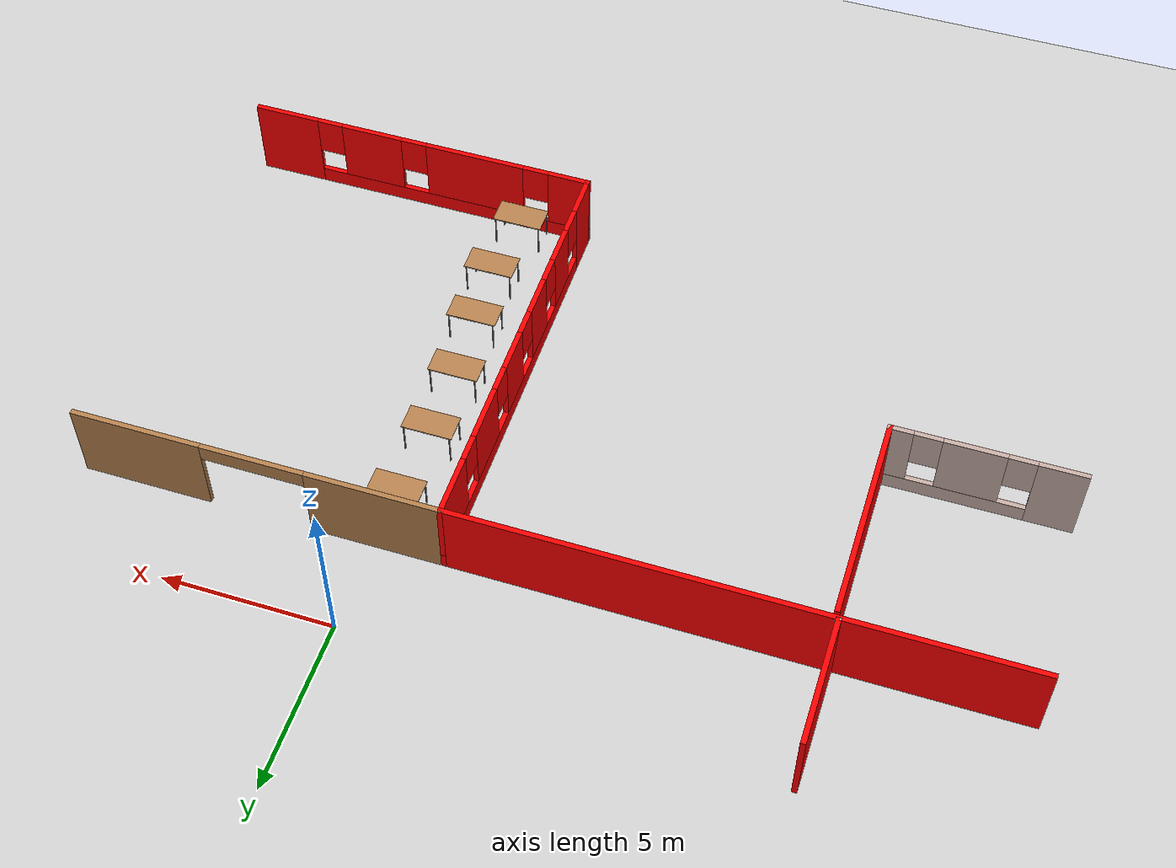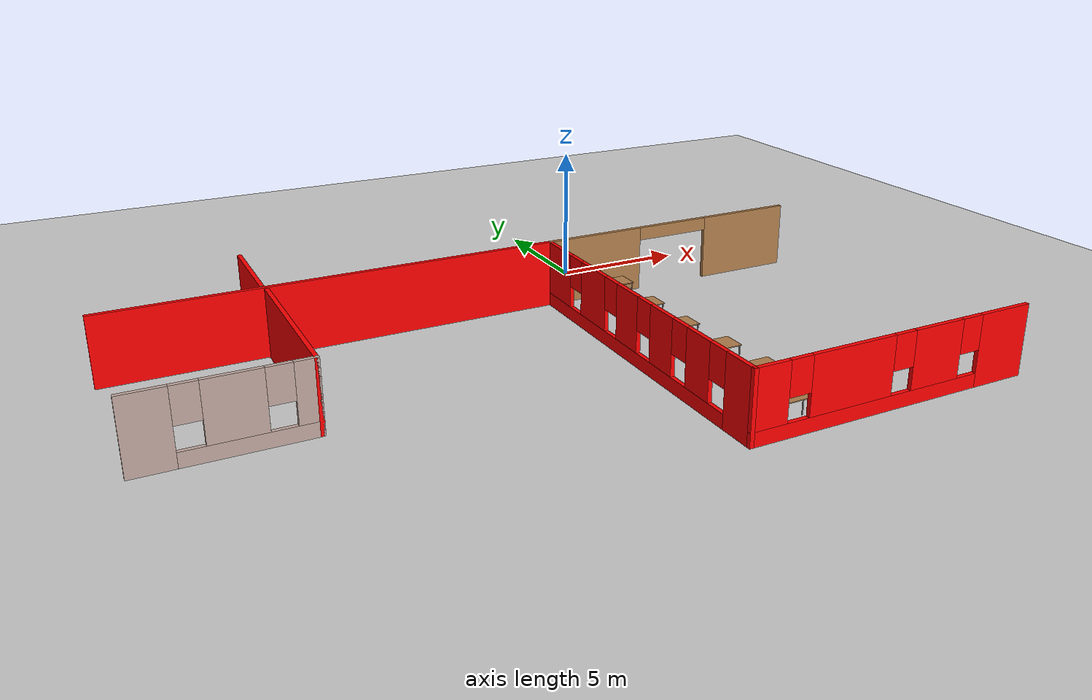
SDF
<sdf version="1.6">
 <world name="default">
  <model name="ground_plane">
   <static>1</static>
   <link name="link">
    <collision name="collision">
     <geometry><plane><normal>0 0 1</normal><size>100 100</size></plane></geometry>
     <surface><friction><ode><mu>100</mu><mu2>50</mu2></ode></friction></surface>
    </collision>
    <visual name="visual">
     <cast_shadows>0</cast_shadows>
     <geometry><plane><normal>0 0 1</normal><size>100 100</size></plane></geometry>
     <material>
      <script><uri>file://media/materials/scripts/gazebo.material</uri><name>Gazebo/Grey</name></script>
     </material>
    </visual>
   </link>
  </model>
  <model name="FloorPlan">
   <pose>0.309467 -3.19534 0 0 -0 0</pose>
   <link name="Wall_106">
    <pose>2.89263 0.399775 0 0 -0 0</pose>
    <visual name="Wall_106_Visual_0">
     <pose>-3.40324 0 1.25 0 -0 0</pose>
     <geometry><box><size>3.94351 0.15 2.5</size></box></geometry>
     <material>
      <script><uri>file://media/materials/scripts/gazebo.material</uri><name>Gazebo/Wood</name></script>
      <ambient>1 1 1 1</ambient>
     </material>
     <meta><layer>0</layer></meta>
    </visual>
    <collision name="Wall_106_Collision_0">
     <geometry><box><size>3.94351 0.15 2.5</size></box></geometry>
     <pose>-3.40324 0 1.25 0 -0 0</pose>
    </collision>
    <visual name="Wall_106_Visual_1">
     <pose>3.47176 0 1.25 0 -0 0</pose>
     <geometry><box><size>3.80649 0.15 2.5</size></box></geometry>
     <material>
      <script><uri>file://media/materials/scripts/gazebo.material</uri><name>Gazebo/Wood</name></script>
      <ambient>1 1 1 1</ambient>
     </material>
     <meta><layer>0</layer></meta>
    </visual>
    <collision name="Wall_106_Collision_1">
     <geometry><box><size>3.80649 0.15 2.5</size></box></geometry>
     <pose>3.47176 0 1.25 0 -0 0</pose>
    </collision>
    <visual name="Wall_106_Visual_2">
     <pose>0.068513 0 2.25 0 -0 0</pose>
     <geometry><box><size>3 0.15 0.5</size></box></geometry>
     <material>
      <script><uri>file://media/materials/scripts/gazebo.material</uri><name>Gazebo/Wood</name></script>
      <ambient>1 1 1 1</ambient>
     </material>
     <meta><layer>0</layer></meta>
    </visual>
    <collision name="Wall_106_Collision_2">
     <geometry><box><size>3 0.15 0.5</size></box></geometry>
     <pose>0.068513 0 2.25 0 -0 0</pose>
    </collision>
   </link>
   <link name="Wall_49">
    <pose>-15.6609 -5.93407 0 0 -0 0</pose>
    <visual name="Wall_49_Visual_0">
     <pose>-2.05494 0 1.25 0 -0 0</pose>
     <geometry><box><size>1.39012 0.15 2.5</size></box></geometry>
     <material>
      <script><uri>file://media/materials/scripts/gazebo.material</uri><name>Gazebo/Grey</name></script>
      <ambient>0.760784 0.662745 0.627451 1</ambient>
     </material>
     <meta><layer>0</layer></meta>
    </visual>
    <collision name="Wall_49_Collision_0">
     <geometry><box><size>1.39012 0.15 2.5</size></box></geometry>
     <pose>-2.05494 0 1.25 0 -0 0</pose>
    </collision>
    <visual name="Wall_49_Visual_1">
     <pose>0.69506 0 0.25 0 -0 0</pose>
     <geometry><box><size>4.10988 0.15 0.5</size></box></geometry>
     <material>
      <script><uri>file://media/materials/scripts/gazebo.material</uri><name>Gazebo/Grey</name></script>
      <ambient>0.760784 0.662745 0.627451 1</ambient>
     </material>
     <meta><layer>0</layer></meta>
    </visual>
    <collision name="Wall_49_Collision_1">
     <geometry><box><size>4.10988 0.15 0.5</size></box></geometry>
     <pose>0.69506 0 0.25 0 -0 0</pose>
    </collision>
    <visual name="Wall_49_Visual_2">
     <pose>0.324179 0 1.5 0 -0 0</pose>
     <geometry><box><size>1.76812 0.15 2</size></box></geometry>
     <material>
      <script><uri>file://media/materials/scripts/gazebo.material</uri><name>Gazebo/Grey</name></script>
      <ambient>0.760784 0.662745 0.627451 1</ambient>
     </material>
     <meta><layer>0</layer></meta>
    </visual>
    <collision name="Wall_49_Collision_2">
     <geometry><box><size>1.76812 0.15 2</size></box></geometry>
     <pose>0.324179 0 1.5 0 -0 0</pose>
    </collision>
    <visual name="Wall_49_Visual_3">
     <pose>2.37912 0 1.5 0 -0 0</pose>
     <geometry><box><size>0.741762 0.15 2</size></box></geometry>
     <material>
      <script><uri>file://media/materials/scripts/gazebo.material</uri><name>Gazebo/Grey</name></script>
      <ambient>0.760784 0.662745 0.627451 1</ambient>
     </material>
     <meta><layer>0</layer></meta>
    </visual>
    <collision name="Wall_49_Collision_3">
     <geometry><box><size>0.741762 0.15 2</size></box></geometry>
     <pose>2.37912 0 1.5 0 -0 0</pose>
    </collision>
    <visual name="Wall_49_Visual_4">
     <pose>-0.959881 0 1.9 0 -0 0</pose>
     <geometry><box><size>0.8 0.15 1.2</size></box></geometry>
     <material>
      <script><uri>file://media/materials/scripts/gazebo.material</uri><name>Gazebo/Grey</name></script>
      <ambient>0.760784 0.662745 0.627451 1</ambient>
     </material>
     <meta><layer>0</layer></meta>
    </visual>
    <collision name="Wall_49_Collision_4">
     <geometry><box><size>0.8 0.15 1.2</size></box></geometry>
     <pose>-0.959881 0 1.9 0 -0 0</pose>
    </collision>
    <visual name="Wall_49_Visual_5">
     <pose>1.60824 0 1.9 0 -0 0</pose>
     <geometry><box><size>0.8 0.15 1.2</size></box></geometry>
     <material>
      <script><uri>file://media/materials/scripts/gazebo.material</uri><name>Gazebo/Grey</name></script>
      <ambient>0.760784 0.662745 0.627451 1</ambient>
     </material>
     <meta><layer>0</layer></meta>
    </visual>
    <collision name="Wall_49_Collision_5">
     <geometry><box><size>0.8 0.15 1.2</size></box></geometry>
     <pose>1.60824 0 1.9 0 -0 0</pose>
    </collision>
   </link>
   <link name="Wall_54">
    <collision name="Wall_54_Collision">
     <geometry><box><size>6.25 0.15 2.5</size></box></geometry>
     <pose>0 0 1.25 0 -0 0</pose>
    </collision>
    <visual name="Wall_54_Visual">
     <pose>0 0 1.25 0 -0 0</pose>
     <geometry><box><size>6.25 0.15 2.5</size></box></geometry>
     <material>
      <script><uri>file://media/materials/scripts/gazebo.material</uri><name>Gazebo/Grey</name></script>
      <ambient>1 0 0 1</ambient>
     </material>
     <meta><layer>0</layer></meta>
    </visual>
    <pose>-12.9859 -2.88407 0 0 -0 1.5708</pose>
   </link>
   <link name="Wall_6">
    <pose>2.89263 -12.2002 0 0 -0 3.14159</pose>
    <visual name="Wall_6_Visual_0">
     <pose>-4.36632 0 1.25 0 -0 0</pose>
     <geometry><box><size>2.01735 0.15 2.5</size></box></geometry>
     <material>
      <script><uri>file://media/materials/scripts/gazebo.material</uri><name>Gazebo/Grey</name></script>
      <ambient>1 0 0 1</ambient>
     </material>
     <meta><layer>0</layer></meta>
    </visual>
    <collision name="Wall_6_Collision_0">
     <geometry><box><size>2.01735 0.15 2.5</size></box></geometry>
     <pose>-4.36632 0 1.25 0 -0 0</pose>
    </collision>
    <visual name="Wall_6_Visual_1">
     <pose>1.00868 0 0.25 0 -0 0</pose>
     <geometry><box><size>8.73265 0.15 0.5</size></box></geometry>
     <material>
      <script><uri>file://media/materials/scripts/gazebo.material</uri><name>Gazebo/Grey</name></script>
      <ambient>1 0 0 1</ambient>
     </material>
     <meta><layer>0</layer></meta>
    </visual>
    <collision name="Wall_6_Collision_1">
     <geometry><box><size>8.73265 0.15 0.5</size></box></geometry>
     <pose>1.00868 0 0.25 0 -0 0</pose>
    </collision>
    <visual name="Wall_6_Visual_2">
     <pose>-1.59333 0 1.5 0 -0 0</pose>
     <geometry><box><size>1.92863 0.15 2</size></box></geometry>
     <material>
      <script><uri>file://media/materials/scripts/gazebo.material</uri><name>Gazebo/Grey</name></script>
      <ambient>1 0 0 1</ambient>
     </material>
     <meta><layer>0</layer></meta>
    </visual>
    <collision name="Wall_6_Collision_2">
     <geometry><box><size>1.92863 0.15 2</size></box></geometry>
     <pose>-1.59333 0 1.5 0 -0 0</pose>
    </collision>
    <visual name="Wall_6_Visual_3">
     <pose>1.72382 0 1.5 0 -0 0</pose>
     <geometry><box><size>3.10568 0.15 2</size></box></geometry>
     <material>
      <script><uri>file://media/materials/scripts/gazebo.material</uri><name>Gazebo/Grey</name></script>
      <ambient>1 0 0 1</ambient>
     </material>
     <meta><layer>0</layer></meta>
    </visual>
    <collision name="Wall_6_Collision_3">
     <geometry><box><size>3.10568 0.15 2</size></box></geometry>
     <pose>1.72382 0 1.5 0 -0 0</pose>
    </collision>
    <visual name="Wall_6_Visual_4">
     <pose>4.72583 0 1.5 0 -0 0</pose>
     <geometry><box><size>1.29834 0.15 2</size></box></geometry>
     <material>
      <script><uri>file://media/materials/scripts/gazebo.material</uri><name>Gazebo/Grey</name></script>
      <ambient>1 0 0 1</ambient>
     </material>
     <meta><layer>0</layer></meta>
    </visual>
    <collision name="Wall_6_Collision_4">
     <geometry><box><size>1.29834 0.15 2</size></box></geometry>
     <pose>4.72583 0 1.5 0 -0 0</pose>
    </collision>
    <visual name="Wall_6_Visual_5">
     <pose>-2.95765 0 1.9 0 -0 0</pose>
     <geometry><box><size>0.8 0.15 1.2</size></box></geometry>
     <material>
      <script><uri>file://media/materials/scripts/gazebo.material</uri><name>Gazebo/Grey</name></script>
      <ambient>1 0 0 1</ambient>
     </material>
     <meta><layer>0</layer></meta>
    </visual>
    <collision name="Wall_6_Collision_5">
     <geometry><box><size>0.8 0.15 1.2</size></box></geometry>
     <pose>-2.95765 0 1.9 0 -0 0</pose>
    </collision>
    <visual name="Wall_6_Visual_6">
     <pose>-0.22902 0 1.9 0 -0 0</pose>
     <geometry><box><size>0.8 0.15 1.2</size></box></geometry>
     <material>
      <script><uri>file://media/materials/scripts/gazebo.material</uri><name>Gazebo/Grey</name></script>
      <ambient>1 0 0 1</ambient>
     </material>
     <meta><layer>0</layer></meta>
    </visual>
    <collision name="Wall_6_Collision_6">
     <geometry><box><size>0.8 0.15 1.2</size></box></geometry>
     <pose>-0.22902 0 1.9 0 -0 0</pose>
    </collision>
    <visual name="Wall_6_Visual_7">
     <pose>3.67666 0 1.9 0 -0 0</pose>
     <geometry><box><size>0.8 0.15 1.2</size></box></geometry>
     <material>
      <script><uri>file://media/materials/scripts/gazebo.material</uri><name>Gazebo/Grey</name></script>
      <ambient>1 0 0 1</ambient>
     </material>
     <meta><layer>0</layer></meta>
    </visual>
    <collision name="Wall_6_Collision_7">
     <geometry><box><size>0.8 0.15 1.2</size></box></geometry>
     <pose>3.67666 0 1.9 0 -0 0</pose>
    </collision>
   </link>
   <link name="Wall_7">
    <pose>-2.40737 -5.90023 0 0 -0 1.5708</pose>
    <visual name="Wall_7_Visual_0">
     <pose>-5.70503 0 1.25 0 -0 0</pose>
     <geometry><box><size>1.33994 0.15 2.5</size></box></geometry>
     <material>
      <script><uri>file://media/materials/scripts/gazebo.material</uri><name>Gazebo/Grey</name></script>
      <ambient>1 0 0 1</ambient>
     </material>
     <meta><layer>0</layer></meta>
    </visual>
    <collision name="Wall_7_Collision_0">
     <geometry><box><size>1.33994 0.15 2.5</size></box></geometry>
     <pose>-5.70503 0 1.25 0 -0 0</pose>
    </collision>
    <visual name="Wall_7_Visual_1">
     <pose>0.66997 0 0.25 0 -0 0</pose>
     <geometry><box><size>11.4101 0.15 0.5</size></box></geometry>
     <material>
      <script><uri>file://media/materials/scripts/gazebo.material</uri><name>Gazebo/Grey</name></script>
      <ambient>1 0 0 1</ambient>
     </material>
     <meta><layer>0</layer></meta>
    </visual>
    <collision name="Wall_7_Collision_1">
     <geometry><box><size>11.4101 0.15 0.5</size></box></geometry>
     <pose>0.66997 0 0.25 0 -0 0</pose>
    </collision>
    <visual name="Wall_7_Visual_2">
     <pose>-3.61851 0 1.5 0 -0 0</pose>
     <geometry><box><size>1.2331 0.15 2</size></box></geometry>
     <material>
      <script><uri>file://media/materials/scripts/gazebo.material</uri><name>Gazebo/Grey</name></script>
      <ambient>1 0 0 1</ambient>
     </material>
     <meta><layer>0</layer></meta>
    </visual>
    <collision name="Wall_7_Collision_2">
     <geometry><box><size>1.2331 0.15 2</size></box></geometry>
     <pose>-3.61851 0 1.5 0 -0 0</pose>
    </collision>
    <visual name="Wall_7_Visual_3">
     <pose>-1.55867 0 1.5 0 -0 0</pose>
     <geometry><box><size>1.2866 0.15 2</size></box></geometry>
     <material>
      <script><uri>file://media/materials/scripts/gazebo.material</uri><name>Gazebo/Grey</name></script>
      <ambient>1 0 0 1</ambient>
     </material>
     <meta><layer>0</layer></meta>
    </visual>
    <collision name="Wall_7_Collision_3">
     <geometry><box><size>1.2866 0.15 2</size></box></geometry>
     <pose>-1.55867 0 1.5 0 -0 0</pose>
    </collision>
    <visual name="Wall_7_Visual_4">
     <pose>0.554682 0 1.5 0 -0 0</pose>
     <geometry><box><size>1.3401 0.15 2</size></box></geometry>
     <material>
      <script><uri>file://media/materials/scripts/gazebo.material</uri><name>Gazebo/Grey</name></script>
      <ambient>1 0 0 1</ambient>
     </material>
     <meta><layer>0</layer></meta>
    </visual>
    <collision name="Wall_7_Collision_4">
     <geometry><box><size>1.3401 0.15 2</size></box></geometry>
     <pose>0.554682 0 1.5 0 -0 0</pose>
    </collision>
    <visual name="Wall_7_Visual_5">
     <pose>2.88204 0 1.5 0 -0 0</pose>
     <geometry><box><size>1.71462 0.15 2</size></box></geometry>
     <material>
      <script><uri>file://media/materials/scripts/gazebo.material</uri><name>Gazebo/Grey</name></script>
      <ambient>1 0 0 1</ambient>
     </material>
     <meta><layer>0</layer></meta>
    </visual>
    <collision name="Wall_7_Collision_5">
     <geometry><box><size>1.71462 0.15 2</size></box></geometry>
     <pose>2.88204 0 1.5 0 -0 0</pose>
    </collision>
    <visual name="Wall_7_Visual_6">
     <pose>5.45718 0 1.5 0 -0 0</pose>
     <geometry><box><size>1.83565 0.15 2</size></box></geometry>
     <material>
      <script><uri>file://media/materials/scripts/gazebo.material</uri><name>Gazebo/Grey</name></script>
      <ambient>1 0 0 1</ambient>
     </material>
     <meta><layer>0</layer></meta>
    </visual>
    <collision name="Wall_7_Collision_6">
     <geometry><box><size>1.83565 0.15 2</size></box></geometry>
     <pose>5.45718 0 1.5 0 -0 0</pose>
    </collision>
    <visual name="Wall_7_Visual_7">
     <pose>-4.63506 0 1.9 0 -0 0</pose>
     <geometry><box><size>0.8 0.15 1.2</size></box></geometry>
     <material>
      <script><uri>file://media/materials/scripts/gazebo.material</uri><name>Gazebo/Grey</name></script>
      <ambient>1 0 0 1</ambient>
     </material>
     <meta><layer>0</layer></meta>
    </visual>
    <collision name="Wall_7_Collision_7">
     <geometry><box><size>0.8 0.15 1.2</size></box></geometry>
     <pose>-4.63506 0 1.9 0 -0 0</pose>
    </collision>
    <visual name="Wall_7_Visual_8">
     <pose>-2.60196 0 1.9 0 -0 0</pose>
     <geometry><box><size>0.8 0.15 1.2</size></box></geometry>
     <material>
      <script><uri>file://media/materials/scripts/gazebo.material</uri><name>Gazebo/Grey</name></script>
      <ambient>1 0 0 1</ambient>
     </material>
     <meta><layer>0</layer></meta>
    </visual>
    <collision name="Wall_7_Collision_8">
     <geometry><box><size>0.8 0.15 1.2</size></box></geometry>
     <pose>-2.60196 0 1.9 0 -0 0</pose>
    </collision>
    <visual name="Wall_7_Visual_9">
     <pose>-0.515368 0 1.9 0 -0 0</pose>
     <geometry><box><size>0.8 0.15 1.2</size></box></geometry>
     <material>
      <script><uri>file://media/materials/scripts/gazebo.material</uri><name>Gazebo/Grey</name></script>
      <ambient>1 0 0 1</ambient>
     </material>
     <meta><layer>0</layer></meta>
    </visual>
    <collision name="Wall_7_Collision_9">
     <geometry><box><size>0.8 0.15 1.2</size></box></geometry>
     <pose>-0.515368 0 1.9 0 -0 0</pose>
    </collision>
    <visual name="Wall_7_Visual_10">
     <pose>1.62473 0 1.9 0 -0 0</pose>
     <geometry><box><size>0.8 0.15 1.2</size></box></geometry>
     <material>
      <script><uri>file://media/materials/scripts/gazebo.material</uri><name>Gazebo/Grey</name></script>
      <ambient>1 0 0 1</ambient>
     </material>
     <meta><layer>0</layer></meta>
    </visual>
    <collision name="Wall_7_Collision_10">
     <geometry><box><size>0.8 0.15 1.2</size></box></geometry>
     <pose>1.62473 0 1.9 0 -0 0</pose>
    </collision>
    <visual name="Wall_7_Visual_11">
     <pose>4.13935 0 1.9 0 -0 0</pose>
     <geometry><box><size>0.8 0.15 1.2</size></box></geometry>
     <material>
      <script><uri>file://media/materials/scripts/gazebo.material</uri><name>Gazebo/Grey</name></script>
      <ambient>1 0 0 1</ambient>
     </material>
     <meta><layer>0</layer></meta>
    </visual>
    <collision name="Wall_7_Collision_11">
     <geometry><box><size>0.8 0.15 1.2</size></box></geometry>
     <pose>4.13935 0 1.9 0 -0 0</pose>
    </collision>
   </link>
   <link name="Wall_8">
    <collision name="Wall_8_Collision">
     <geometry><box><size>16.25 0.15 2.5</size></box></geometry>
     <pose>0 0 1.25 0 -0 0</pose>
    </collision>
    <visual name="Wall_8_Visual">
     <pose>0 0 1.25 0 -0 0</pose>
     <geometry><box><size>16.25 0.15 2.5</size></box></geometry>
     <material>
      <script><uri>file://media/materials/scripts/gazebo.material</uri><name>Gazebo/Grey</name></script>
      <ambient>1 0 0 1</ambient>
     </material>
     <meta><layer>0</layer></meta>
    </visual>
    <pose>-10.4574 0.399775 0 0 -0 3.14159</pose>
   </link>
   <link name="Wall_87">
    <collision name="Wall_87_Collision">
     <geometry><box><size>3.75 0.15 2.5</size></box></geometry>
     <pose>0 0 1.25 0 -0 0</pose>
    </collision>
    <visual name="Wall_87_Visual">
     <pose>0 0 1.25 0 -0 0</pose>
     <geometry><box><size>3.75 0.15 2.5</size></box></geometry>
     <material>
      <script><uri>file://media/materials/scripts/gazebo.material</uri><name>Gazebo/Grey</name></script>
      <ambient>1 0 0 1</ambient>
     </material>
     <meta><layer>0</layer></meta>
    </visual>
    <pose>-13.0724 2.2709 0 0 -0 -1.5708</pose>
   </link>
   <link name="Wall_88">
    <collision name="Wall_88_Collision">
     <geometry><box><size>0.16 0.15 2.5</size></box></geometry>
     <pose>0 0 1.25 0 -0 0</pose>
    </collision>
    <visual name="Wall_88_Visual">
     <pose>0 0 1.25 0 -0 0</pose>
     <geometry><box><size>0.16 0.15 2.5</size></box></geometry>
     <material>
      <script><uri>file://media/materials/scripts/gazebo.material</uri><name>Gazebo/Grey</name></script>
      <ambient>1 1 1 1</ambient>
     </material>
     <meta><layer>0</layer></meta>
    </visual>
    <pose>-13.0674 0.470897 0 0 -0 0</pose>
   </link>
   <static>1</static>
  </model>
  <model name="table">
   <static>1</static>
   <link name="link">
    <collision name="surface">
     <pose>0 0 1 0 -0 0</pose>
     <geometry><box><size>1.5 0.8 0.03</size></box></geometry>
     <surface><friction><ode><mu>0.6</mu><mu2>0.6</mu2></ode></friction></surface>
    </collision>
    <visual name="visual1">
     <pose>0 0 1 0 -0 0</pose>
     <geometry><box><size>1.5 0.8 0.03</size></box></geometry>
     <material>
      <script><uri>file://media/materials/scripts/gazebo.material</uri><name>Gazebo/Wood</name></script>
     </material>
    </visual>
    <collision name="front_left_leg">
     <pose>0.68 0.38 0.5 0 -0 0</pose>
     <geometry><cylinder><radius>0.02</radius><length>1</length></cylinder></geometry>
    </collision>
    <visual name="front_left_leg">
     <pose>0.68 0.38 0.5 0 -0 0</pose>
     <geometry><cylinder><radius>0.02</radius><length>1</length></cylinder></geometry>
     <material>
      <script><uri>file://media/materials/scripts/gazebo.material</uri><name>Gazebo/Grey</name></script>
     </material>
    </visual>
    <collision name="front_right_leg">
     <pose>0.68 -0.38 0.5 0 -0 0</pose>
     <geometry><cylinder><radius>0.02</radius><length>1</length></cylinder></geometry>
    </collision>
    <visual name="front_right_leg">
     <pose>0.68 -0.38 0.5 0 -0 0</pose>
     <geometry><cylinder><radius>0.02</radius><length>1</length></cylinder></geometry>
     <material>
      <script><uri>file://media/materials/scripts/gazebo.material</uri><name>Gazebo/Grey</name></script>
     </material>
    </visual>
    <collision name="back_right_leg">
     <pose>-0.68 -0.38 0.5 0 -0 0</pose>
     <geometry><cylinder><radius>0.02</radius><length>1</length></cylinder></geometry>
    </collision>
    <visual name="back_right_leg">
     <pose>-0.68 -0.38 0.5 0 -0 0</pose>
     <geometry><cylinder><radius>0.02</radius><length>1</length></cylinder></geometry>
     <material>
      <script><uri>file://media/materials/scripts/gazebo.material</uri><name>Gazebo/Grey</name></script>
     </material>
    </visual>
    <collision name="back_left_leg">
     <pose>-0.68 0.38 0.5 0 -0 0</pose>
     <geometry><cylinder><radius>0.02</radius><length>1</length></cylinder></geometry>
    </collision>
    <visual name="back_left_leg">
     <pose>-0.68 0.38 0.5 0 -0 0</pose>
     <geometry><cylinder><radius>0.02</radius><length>1</length></cylinder></geometry>
     <material>
      <script><uri>file://media/materials/scripts/gazebo.material</uri><name>Gazebo/Grey</name></script>
     </material>
    </visual>
   </link>
   <pose>0.027881 -12.7345 0 0 -0 0</pose>
  </model>
  <model name="table_0">
   <static>1</static>
   <link name="link">
    <collision name="surface">
     <pose>0 0 1 0 -0 0</pose>
     <geometry><box><size>1.5 0.8 0.03</size></box></geometry>
     <surface><friction><ode><mu>0.6</mu><mu2>0.6</mu2></ode></friction></surface>
    </collision>
    <visual name="visual1">
     <pose>0 0 1 0 -0 0</pose>
     <geometry><box><size>1.5 0.8 0.03</size></box></geometry>
     <material>
      <script><uri>file://media/materials/scripts/gazebo.material</uri><name>Gazebo/Wood</name></script>
     </material>
    </visual>
    <collision name="front_left_leg">
     <pose>0.68 0.38 0.5 0 -0 0</pose>
     <geometry><cylinder><radius>0.02</radius><length>1</length></cylinder></geometry>
    </collision>
    <visual name="front_left_leg">
     <pose>0.68 0.38 0.5 0 -0 0</pose>
     <geometry><cylinder><radius>0.02</radius><length>1</length></cylinder></geometry>
     <material>
      <script><uri>file://media/materials/scripts/gazebo.material</uri><name>Gazebo/Grey</name></script>
     </material>
    </visual>
    <collision name="front_right_leg">
     <pose>0.68 -0.38 0.5 0 -0 0</pose>
     <geometry><cylinder><radius>0.02</radius><length>1</length></cylinder></geometry>
    </collision>
    <visual name="front_right_leg">
     <pose>0.68 -0.38 0.5 0 -0 0</pose>
     <geometry><cylinder><radius>0.02</radius><length>1</length></cylinder></geometry>
     <material>
      <script><uri>file://media/materials/scripts/gazebo.material</uri><name>Gazebo/Grey</name></script>
     </material>
    </visual>
    <collision name="back_right_leg">
     <pose>-0.68 -0.38 0.5 0 -0 0</pose>
     <geometry><cylinder><radius>0.02</radius><length>1</length></cylinder></geometry>
    </collision>
    <visual name="back_right_leg">
     <pose>-0.68 -0.38 0.5 0 -0 0</pose>
     <geometry><cylinder><radius>0.02</radius><length>1</length></cylinder></geometry>
     <material>
      <script><uri>file://media/materials/scripts/gazebo.material</uri><name>Gazebo/Grey</name></script>
     </material>
    </visual>
    <collision name="back_left_leg">
     <pose>-0.68 0.38 0.5 0 -0 0</pose>
     <geometry><cylinder><radius>0.02</radius><length>1</length></cylinder></geometry>
    </collision>
    <visual name="back_left_leg">
     <pose>-0.68 0.38 0.5 0 -0 0</pose>
     <geometry><cylinder><radius>0.02</radius><length>1</length></cylinder></geometry>
     <material>
      <script><uri>file://media/materials/scripts/gazebo.material</uri><name>Gazebo/Grey</name></script>
     </material>
    </visual>
   </link>
   <pose>-0.128707 -10.7909 0 0 -0 0</pose>
  </model>
  <model name="table_1">
   <static>1</static>
   <link name="link">
    <collision name="surface">
     <pose>0 0 1 0 -0 0</pose>
     <geometry><box><size>1.5 0.8 0.03</size></box></geometry>
     <surface><friction><ode><mu>0.6</mu><mu2>0.6</mu2></ode></friction></surface>
    </collision>
    <visual name="visual1">
     <pose>0 0 1 0 -0 0</pose>
     <geometry><box><size>1.5 0.8 0.03</size></box></geometry>
     <material>
      <script><uri>file://media/materials/scripts/gazebo.material</uri><name>Gazebo/Wood</name></script>
     </material>
    </visual>
    <collision name="front_left_leg">
     <pose>0.68 0.38 0.5 0 -0 0</pose>
     <geometry><cylinder><radius>0.02</radius><length>1</length></cylinder></geometry>
    </collision>
    <visual name="front_left_leg">
     <pose>0.68 0.38 0.5 0 -0 0</pose>
     <geometry><cylinder><radius>0.02</radius><length>1</length></cylinder></geometry>
     <material>
      <script><uri>file://media/materials/scripts/gazebo.material</uri><name>Gazebo/Grey</name></script>
     </material>
    </visual>
    <collision name="front_right_leg">
     <pose>0.68 -0.38 0.5 0 -0 0</pose>
     <geometry><cylinder><radius>0.02</radius><length>1</length></cylinder></geometry>
    </collision>
    <visual name="front_right_leg">
     <pose>0.68 -0.38 0.5 0 -0 0</pose>
     <geometry><cylinder><radius>0.02</radius><length>1</length></cylinder></geometry>
     <material>
      <script><uri>file://media/materials/scripts/gazebo.material</uri><name>Gazebo/Grey</name></script>
     </material>
    </visual>
    <collision name="back_right_leg">
     <pose>-0.68 -0.38 0.5 0 -0 0</pose>
     <geometry><cylinder><radius>0.02</radius><length>1</length></cylinder></geometry>
    </collision>
    <visual name="back_right_leg">
     <pose>-0.68 -0.38 0.5 0 -0 0</pose>
     <geometry><cylinder><radius>0.02</radius><length>1</length></cylinder></geometry>
     <material>
      <script><uri>file://media/materials/scripts/gazebo.material</uri><name>Gazebo/Grey</name></script>
     </material>
    </visual>
    <collision name="back_left_leg">
     <pose>-0.68 0.38 0.5 0 -0 0</pose>
     <geometry><cylinder><radius>0.02</radius><length>1</length></cylinder></geometry>
    </collision>
    <visual name="back_left_leg">
     <pose>-0.68 0.38 0.5 0 -0 0</pose>
     <geometry><cylinder><radius>0.02</radius><length>1</length></cylinder></geometry>
     <material>
      <script><uri>file://media/materials/scripts/gazebo.material</uri><name>Gazebo/Grey</name></script>
     </material>
    </visual>
   </link>
   <pose>-0.331607 -8.68007 0 0 -0 0</pose>
  </model>
  <model name="table_2">
   <static>1</static>
   <link name="link">
    <collision name="surface">
     <pose>0 0 1 0 -0 0</pose>
     <geometry><box><size>1.5 0.8 0.03</size></box></geometry>
     <surface><friction><ode><mu>0.6</mu><mu2>0.6</mu2></ode></friction></surface>
    </collision>
    <visual name="visual1">
     <pose>0 0 1 0 -0 0</pose>
     <geometry><box><size>1.5 0.8 0.03</size></box></geometry>
     <material>
      <script><uri>file://media/materials/scripts/gazebo.material</uri><name>Gazebo/Wood</name></script>
     </material>
    </visual>
    <collision name="front_left_leg">
     <pose>0.68 0.38 0.5 0 -0 0</pose>
     <geometry><cylinder><radius>0.02</radius><length>1</length></cylinder></geometry>
    </collision>
    <visual name="front_left_leg">
     <pose>0.68 0.38 0.5 0 -0 0</pose>
     <geometry><cylinder><radius>0.02</radius><length>1</length></cylinder></geometry>
     <material>
      <script><uri>file://media/materials/scripts/gazebo.material</uri><name>Gazebo/Grey</name></script>
     </material>
    </visual>
    <collision name="front_right_leg">
     <pose>0.68 -0.38 0.5 0 -0 0</pose>
     <geometry><cylinder><radius>0.02</radius><length>1</length></cylinder></geometry>
    </collision>
    <visual name="front_right_leg">
     <pose>0.68 -0.38 0.5 0 -0 0</pose>
     <geometry><cylinder><radius>0.02</radius><length>1</length></cylinder></geometry>
     <material>
      <script><uri>file://media/materials/scripts/gazebo.material</uri><name>Gazebo/Grey</name></script>
     </material>
    </visual>
    <collision name="back_right_leg">
     <pose>-0.68 -0.38 0.5 0 -0 0</pose>
     <geometry><cylinder><radius>0.02</radius><length>1</length></cylinder></geometry>
    </collision>
    <visual name="back_right_leg">
     <pose>-0.68 -0.38 0.5 0 -0 0</pose>
     <geometry><cylinder><radius>0.02</radius><length>1</length></cylinder></geometry>
     <material>
      <script><uri>file://media/materials/scripts/gazebo.material</uri><name>Gazebo/Grey</name></script>
     </material>
    </visual>
    <collision name="back_left_leg">
     <pose>-0.68 0.38 0.5 0 -0 0</pose>
     <geometry><cylinder><radius>0.02</radius><length>1</length></cylinder></geometry>
    </collision>
    <visual name="back_left_leg">
     <pose>-0.68 0.38 0.5 0 -0 0</pose>
     <geometry><cylinder><radius>0.02</radius><length>1</length></cylinder></geometry>
     <material>
      <script><uri>file://media/materials/scripts/gazebo.material</uri><name>Gazebo/Grey</name></script>
     </material>
    </visual>
   </link>
   <pose>-0.361272 -6.50679 0 0 -0 0</pose>
  </model>
  <model name="table_3">
   <static>1</static>
   <link name="link">
    <collision name="surface">
     <pose>0 0 1 0 -0 0</pose>
     <geometry><box><size>1.5 0.8 0.03</size></box></geometry>
     <surface><friction><ode><mu>0.6</mu><mu2>0.6</mu2></ode></friction></surface>
    </collision>
    <visual name="visual1">
     <pose>0 0 1 0 -0 0</pose>
     <geometry><box><size>1.5 0.8 0.03</size></box></geometry>
     <material>
      <script><uri>file://media/materials/scripts/gazebo.material</uri><name>Gazebo/Wood</name></script>
     </material>
    </visual>
    <collision name="front_left_leg">
     <pose>0.68 0.38 0.5 0 -0 0</pose>
     <geometry><cylinder><radius>0.02</radius><length>1</length></cylinder></geometry>
    </collision>
    <visual name="front_left_leg">
     <pose>0.68 0.38 0.5 0 -0 0</pose>
     <geometry><cylinder><radius>0.02</radius><length>1</length></cylinder></geometry>
     <material>
      <script><uri>file://media/materials/scripts/gazebo.material</uri><name>Gazebo/Grey</name></script>
     </material>
    </visual>
    <collision name="front_right_leg">
     <pose>0.68 -0.38 0.5 0 -0 0</pose>
     <geometry><cylinder><radius>0.02</radius><length>1</length></cylinder></geometry>
    </collision>
    <visual name="front_right_leg">
     <pose>0.68 -0.38 0.5 0 -0 0</pose>
     <geometry><cylinder><radius>0.02</radius><length>1</length></cylinder></geometry>
     <material>
      <script><uri>file://media/materials/scripts/gazebo.material</uri><name>Gazebo/Grey</name></script>
     </material>
    </visual>
    <collision name="back_right_leg">
     <pose>-0.68 -0.38 0.5 0 -0 0</pose>
     <geometry><cylinder><radius>0.02</radius><length>1</length></cylinder></geometry>
    </collision>
    <visual name="back_right_leg">
     <pose>-0.68 -0.38 0.5 0 -0 0</pose>
     <geometry><cylinder><radius>0.02</radius><length>1</length></cylinder></geometry>
     <material>
      <script><uri>file://media/materials/scripts/gazebo.material</uri><name>Gazebo/Grey</name></script>
     </material>
    </visual>
    <collision name="back_left_leg">
     <pose>-0.68 0.38 0.5 0 -0 0</pose>
     <geometry><cylinder><radius>0.02</radius><length>1</length></cylinder></geometry>
    </collision>
    <visual name="back_left_leg">
     <pose>-0.68 0.38 0.5 0 -0 0</pose>
     <geometry><cylinder><radius>0.02</radius><length>1</length></cylinder></geometry>
     <material>
      <script><uri>file://media/materials/scripts/gazebo.material</uri><name>Gazebo/Grey</name></script>
     </material>
    </visual>
   </link>
   <pose>-0.244052 -4.15075 0 0 -0 0</pose>
  </model>
  <model name="table_4">
   <static>1</static>
   <link name="link">
    <collision name="surface">
     <pose>0 0 1 0 -0 0</pose>
     <geometry><box><size>1.5 0.8 0.03</size></box></geometry>
     <surface><friction><ode><mu>0.6</mu><mu2>0.6</mu2></ode></friction></surface>
    </collision>
    <visual name="visual1">
     <pose>0 0 1 0 -0 0</pose>
     <geometry><box><size>1.5 0.8 0.03</size></box></geometry>
     <material>
      <script><uri>file://media/materials/scripts/gazebo.material</uri><name>Gazebo/Wood</name></script>
     </material>
    </visual>
    <collision name="front_left_leg">
     <pose>0.68 0.38 0.5 0 -0 0</pose>
     <geometry><cylinder><radius>0.02</radius><length>1</length></cylinder></geometry>
    </collision>
    <visual name="front_left_leg">
     <pose>0.68 0.38 0.5 0 -0 0</pose>
     <geometry><cylinder><radius>0.02</radius><length>1</length></cylinder></geometry>
     <material>
      <script><uri>file://media/materials/scripts/gazebo.material</uri><name>Gazebo/Grey</name></script>
     </material>
    </visual>
    <collision name="front_right_leg">
     <pose>0.68 -0.38 0.5 0 -0 0</pose>
     <geometry><cylinder><radius>0.02</radius><length>1</length></cylinder></geometry>
    </collision>
    <visual name="front_right_leg">
     <pose>0.68 -0.38 0.5 0 -0 0</pose>
     <geometry><cylinder><radius>0.02</radius><length>1</length></cylinder></geometry>
     <material>
      <script><uri>file://media/materials/scripts/gazebo.material</uri><name>Gazebo/Grey</name></script>
     </material>
    </visual>
    <collision name="back_right_leg">
     <pose>-0.68 -0.38 0.5 0 -0 0</pose>
     <geometry><cylinder><radius>0.02</radius><length>1</length></cylinder></geometry>
    </collision>
    <visual name="back_right_leg">
     <pose>-0.68 -0.38 0.5 0 -0 0</pose>
     <geometry><cylinder><radius>0.02</radius><length>1</length></cylinder></geometry>
     <material>
      <script><uri>file://media/materials/scripts/gazebo.material</uri><name>Gazebo/Grey</name></script>
     </material>
    </visual>
    <collision name="back_left_leg">
     <pose>-0.68 0.38 0.5 0 -0 0</pose>
     <geometry><cylinder><radius>0.02</radius><length>1</length></cylinder></geometry>
    </collision>
    <visual name="back_left_leg">
     <pose>-0.68 0.38 0.5 0 -0 0</pose>
     <geometry><cylinder><radius>0.02</radius><length>1</length></cylinder></geometry>
     <material>
      <script><uri>file://media/materials/scripts/gazebo.material</uri><name>Gazebo/Grey</name></script>
     </material>
    </visual>
   </link>
   <pose>-0.158853 -14.8436 0 0 -0 0</pose>
  </model>
 </world>
</sdf>
